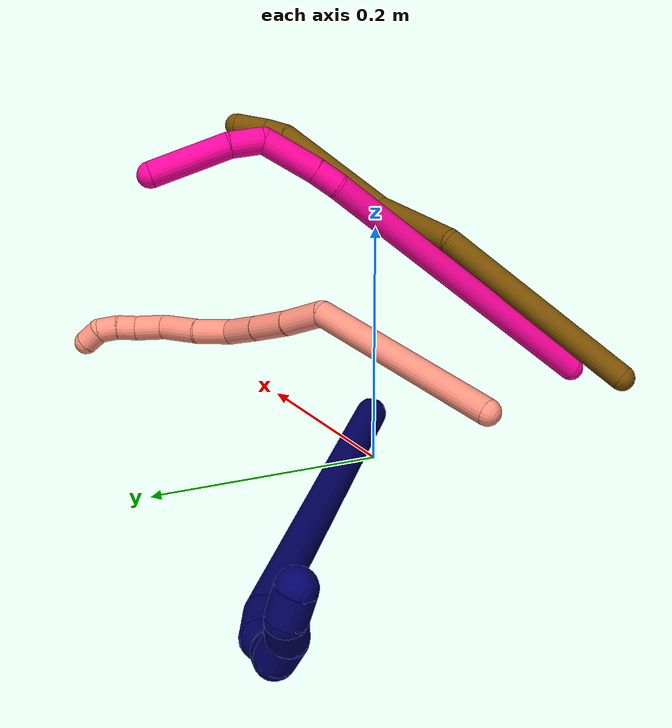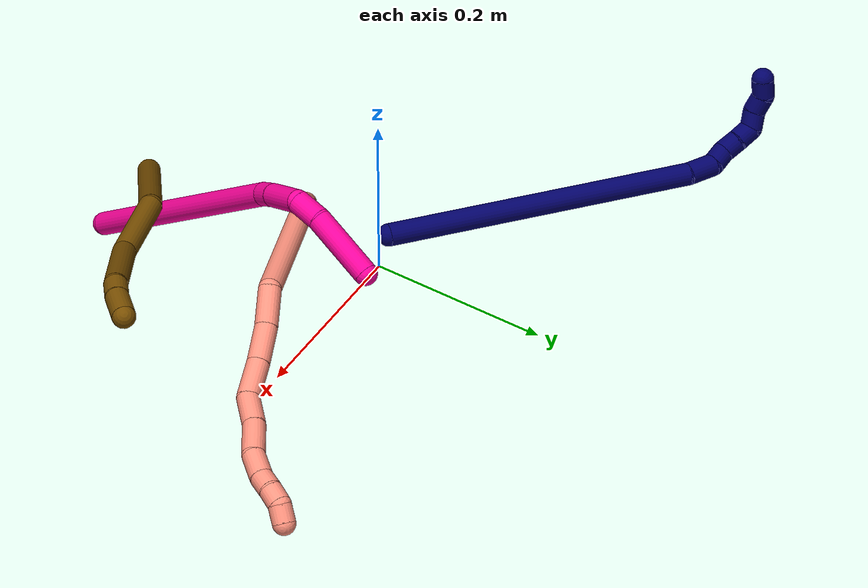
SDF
<sdf version="1.7">
 <world name="default">
  <model name="photoneo_s_sensor">
   <static>1</static>
   <pose>0 0 2 1.57079 1.57079 3.14159</pose>
   <link name="link">
    <inertial><mass>0.1</mass></inertial>
    <sensor name="sensor" type="depth">
     <update_rate>30</update_rate>
     <camera>
      <horizontal_fov>1.22</horizontal_fov>
      <image><width>1920</width><height>1200</height><format>B8G8R8</format></image>
      <clip><near>0.1</near><far>4</far></clip>
      <depth_camera><output>points</output></depth_camera>
     </camera>
     <plugin name="camera_plugin" filename="libgazebo_ros_depth_camera.so">
      <baseline>0.2</baseline>
      <alwaysOn>1</alwaysOn>
      <updateRate>0.0</updateRate>
      <cameraName>camera_ir</cameraName>
      <imageTopicName>/camera/color/image_raw</imageTopicName>
      <cameraInfoTopicName>/camera/color/camera_info</cameraInfoTopicName>
      <depthImageTopicName>/camera/depth/image_raw</depthImageTopicName>
      <depthImageCameraInfoTopicName>/camera/depth/camera_info</depthImageCameraInfoTopicName>
      <pointCloudTopicName>/camera/depth/points</pointCloudTopicName>
      <frameName>fr_optical</frameName>
      <pointCloudCutoff>0.1</pointCloudCutoff>
      <pointCloudCutoffMax>2.0</pointCloudCutoffMax>
      <distortionK1>0</distortionK1>
      <distortionK2>0</distortionK2>
      <distortionK3>0</distortionK3>
      <distortionT1>0</distortionT1>
      <distortionT2>0</distortionT2>
      <CxPrime>0</CxPrime>
      <Cx>0</Cx>
      <Cy>0</Cy>
      <focalLength>0</focalLength>
      <hackBaseline>0</hackBaseline>
     </plugin>
    </sensor>
   </link>
  </model>
  <model name="bin">
   <static>1</static>
   <link name="bottom">
    <collision name="collision-bottom">
     <pose>0 0 -0.01 0 -0 0</pose>
     <geometry><box><size>0.8 0.6 0.02</size></box></geometry>
     <surface>
      <friction><ode><mu>100</mu><mu2>100</mu2></ode></friction>
      <contact><collide_bitmask>65535</collide_bitmask></contact>
     </surface>
    </collision>
   </link>
   <link name="west_wall">
    <collision name="collision-west_wall">
     <pose>-0.41 0 0.1 0 -0 0</pose>
     <geometry><box><size>0.02 0.6 0.2</size></box></geometry>
     <surface>
      <friction><ode><mu>100</mu><mu2>100</mu2></ode></friction>
      <contact><collide_bitmask>65535</collide_bitmask></contact>
     </surface>
    </collision>
   </link>
   <link name="east_wall">
    <collision name="collision-east_wall">
     <pose>0.41 0 0.1 0 -0 0</pose>
     <geometry><box><size>0.02 0.6 0.2</size></box></geometry>
     <surface>
      <friction><ode><mu>100</mu><mu2>100</mu2></ode></friction>
      <contact><collide_bitmask>65535</collide_bitmask></contact>
     </surface>
    </collision>
   </link>
   <link name="south_wall">
    <collision name="collision-south_wall">
     <pose>0 -0.31 0.1 0 -0 0</pose>
     <geometry><box><size>0.8 0.02 0.2</size></box></geometry>
     <surface>
      <friction><ode><mu>100</mu><mu2>100</mu2></ode></friction>
      <contact><collide_bitmask>65535</collide_bitmask></contact>
     </surface>
    </collision>
   </link>
   <link name="north_wall">
    <collision name="collision-north_wall">
     <pose>0 0.31 0.1 0 -0 0</pose>
     <geometry><box><size>0.8 0.02 0.2</size></box></geometry>
     <surface>
      <friction><ode><mu>100</mu><mu2>100</mu2></ode></friction>
      <contact><collide_bitmask>65535</collide_bitmask></contact>
     </surface>
    </collision>
   </link>
  </model>
  <model name="7">
   <static>0</static>
   <link name="7">
    <collision name="collision-cylinder-e_1_1_4">
     <pose>-0.020964 0.137019 0.103674 -0.923059 -0.121411 0.06044</pose>
     <geometry><cylinder><radius>0.0125</radius><length>0.346192</length></cylinder></geometry>
     <surface>
      <friction><ode><mu>1.16</mu><mu2>1.16</mu2><slip1>0</slip1><slip2>0</slip2></ode></friction>
      <contact><ode><kp>1e+06</kp><kd>1</kd><max_vel>0</max_vel><min_depth>0.001</min_depth></ode></contact>
     </surface>
    </collision>
    <visual name="visual-cylinder-e_1_1_4">
     <pose>-0.020964 0.137019 0.103674 -0.923059 -0.121411 0.06044</pose>
     <geometry><cylinder><radius>0.0125</radius><length>0.346192</length></cylinder></geometry>
     <material><ambient>0.003922 0 0.403922 1</ambient></material>
    </visual>
    <collision name="collision-cylinder-e_2_4_5">
     <pose>-0.042593 0.284827 0.218926 -0.750169 -0.042003 0.01654</pose>
     <geometry><cylinder><radius>0.0125</radius><length>0.031677</length></cylinder></geometry>
     <surface>
      <friction><ode><mu>1.16</mu><mu2>1.16</mu2><slip1>0</slip1><slip2>0</slip2></ode></friction>
      <contact><ode><kp>1e+06</kp><kd>1</kd><max_vel>0</max_vel><min_depth>0.001</min_depth></ode></contact>
     </surface>
    </collision>
    <visual name="visual-cylinder-e_2_4_5">
     <pose>-0.042593 0.284827 0.218926 -0.750169 -0.042003 0.01654</pose>
     <geometry><cylinder><radius>0.0125</radius><length>0.031677</length></cylinder></geometry>
     <material><ambient>0.003922 0 0.403922 1</ambient></material>
    </visual>
    <collision name="collision-cylinder-e_3_5_6">
     <pose>-0.040296 0.299489 0.240055 -0.385201 0.27983 -0.054917</pose>
     <geometry><cylinder><radius>0.0125</radius><length>0.021449</length></cylinder></geometry>
     <surface>
      <friction><ode><mu>1.16</mu><mu2>1.16</mu2><slip1>0</slip1><slip2>0</slip2></ode></friction>
      <contact><ode><kp>1e+06</kp><kd>1</kd><max_vel>0</max_vel><min_depth>0.001</min_depth></ode></contact>
     </surface>
    </collision>
    <visual name="visual-cylinder-e_3_5_6">
     <pose>-0.040296 0.299489 0.240055 -0.385201 0.27983 -0.054917</pose>
     <geometry><cylinder><radius>0.0125</radius><length>0.021449</length></cylinder></geometry>
     <material><ambient>0.003922 0 0.403922 1</ambient></material>
    </visual>
    <collision name="collision-cylinder-e_4_6_7">
     <pose>-0.033664 0.310493 0.255785 -0.856873 0.370999 -0.170999</pose>
     <geometry><cylinder><radius>0.0125</radius><length>0.020248</length></cylinder></geometry>
     <surface>
      <friction><ode><mu>1.16</mu><mu2>1.16</mu2><slip1>0</slip1><slip2>0</slip2></ode></friction>
      <contact><ode><kp>1e+06</kp><kd>1</kd><max_vel>0</max_vel><min_depth>0.001</min_depth></ode></contact>
     </surface>
    </collision>
    <visual name="visual-cylinder-e_4_6_7">
     <pose>-0.033664 0.310493 0.255785 -0.856873 0.370999 -0.170999</pose>
     <geometry><cylinder><radius>0.0125</radius><length>0.020248</length></cylinder></geometry>
     <material><ambient>0.003922 0 0.403922 1</ambient></material>
    </visual>
    <collision name="collision-cylinder-e_5_7_8">
     <pose>-0.02665 0.323917 0.269189 -0.716556 0.335771 -0.12675</pose>
     <geometry><cylinder><radius>0.0125</radius><length>0.020297</length></cylinder></geometry>
     <surface>
      <friction><ode><mu>1.16</mu><mu2>1.16</mu2><slip1>0</slip1><slip2>0</slip2></ode></friction>
      <contact><ode><kp>1e+06</kp><kd>1</kd><max_vel>0</max_vel><min_depth>0.001</min_depth></ode></contact>
     </surface>
    </collision>
    <visual name="visual-cylinder-e_5_7_8">
     <pose>-0.02665 0.323917 0.269189 -0.716556 0.335771 -0.12675</pose>
     <geometry><cylinder><radius>0.0125</radius><length>0.020297</length></cylinder></geometry>
     <material><ambient>0.003922 0 0.403922 1</ambient></material>
    </visual>
    <collision name="collision-cylinder-e_6_8_9">
     <pose>-0.014325 0.332605 0.280108 -0.575146 1.11503 -0.364725</pose>
     <geometry><cylinder><radius>0.0125</radius><length>0.020002</length></cylinder></geometry>
     <surface>
      <friction><ode><mu>1.16</mu><mu2>1.16</mu2><slip1>0</slip1><slip2>0</slip2></ode></friction>
      <contact><ode><kp>1e+06</kp><kd>1</kd><max_vel>0</max_vel><min_depth>0.001</min_depth></ode></contact>
     </surface>
    </collision>
    <visual name="visual-cylinder-e_6_8_9">
     <pose>-0.014325 0.332605 0.280108 -0.575146 1.11503 -0.364725</pose>
     <geometry><cylinder><radius>0.0125</radius><length>0.020002</length></cylinder></geometry>
     <material><ambient>0.003922 0 0.403922 1</ambient></material>
    </visual>
    <collision name="collision-cylinder-e_7_9_10">
     <pose>0.002565 0.340838 0.285858 -1.23219 0.906838 -0.664444</pose>
     <geometry><cylinder><radius>0.0125</radius><length>0.020089</length></cylinder></geometry>
     <surface>
      <friction><ode><mu>1.16</mu><mu2>1.16</mu2><slip1>0</slip1><slip2>0</slip2></ode></friction>
      <contact><ode><kp>1e+06</kp><kd>1</kd><max_vel>0</max_vel><min_depth>0.001</min_depth></ode></contact>
     </surface>
    </collision>
    <visual name="visual-cylinder-e_7_9_10">
     <pose>0.002565 0.340838 0.285858 -1.23219 0.906838 -0.664444</pose>
     <geometry><cylinder><radius>0.0125</radius><length>0.020089</length></cylinder></geometry>
     <material><ambient>0.003922 0 0.403922 1</ambient></material>
    </visual>
    <collision name="collision-cylinder-e_8_10_2">
     <pose>0.020404 0.347973 0.288381 -1.22534 1.43279 -1.09842</pose>
     <geometry><cylinder><radius>0.0125</radius><length>0.020046</length></cylinder></geometry>
     <surface>
      <friction><ode><mu>1.16</mu><mu2>1.16</mu2><slip1>0</slip1><slip2>0</slip2></ode></friction>
      <contact><ode><kp>1e+06</kp><kd>1</kd><max_vel>0</max_vel><min_depth>0.001</min_depth></ode></contact>
     </surface>
    </collision>
    <visual name="visual-cylinder-e_8_10_2">
     <pose>0.020404 0.347973 0.288381 -1.22534 1.43279 -1.09842</pose>
     <geometry><cylinder><radius>0.0125</radius><length>0.020046</length></cylinder></geometry>
     <material><ambient>0.003922 0 0.403922 1</ambient></material>
    </visual>
    <collision name="collision-sphere-2">
     <pose>0.030331 0.349271 0.288847 0 -0 0</pose>
     <geometry><sphere><radius>0.0125</radius></sphere></geometry>
     <surface>
      <friction><ode><mu>1.16</mu><mu2>1.16</mu2><slip1>0</slip1><slip2>0</slip2></ode></friction>
      <contact><ode><kp>1e+06</kp><kd>1</kd><max_vel>0</max_vel><min_depth>0.001</min_depth></ode></contact>
     </surface>
    </collision>
    <visual name="visual-sphere-2">
     <pose>0.030331 0.349271 0.288847 0 -0 0</pose>
     <geometry><sphere><radius>0.0125</radius></sphere></geometry>
     <material><ambient>0.003922 0 0.403922 1</ambient></material>
    </visual>
    <collision name="collision-sphere-10">
     <pose>0.010476 0.346676 0.287914 0 -0 0</pose>
     <geometry><sphere><radius>0.0125</radius></sphere></geometry>
     <surface>
      <friction><ode><mu>1.16</mu><mu2>1.16</mu2><slip1>0</slip1><slip2>0</slip2></ode></friction>
      <contact><ode><kp>1e+06</kp><kd>1</kd><max_vel>0</max_vel><min_depth>0.001</min_depth></ode></contact>
     </surface>
    </collision>
    <visual name="visual-sphere-10">
     <pose>0.010476 0.346676 0.287914 0 -0 0</pose>
     <geometry><sphere><radius>0.0125</radius></sphere></geometry>
     <material><ambient>0.003922 0 0.403922 1</ambient></material>
    </visual>
    <collision name="collision-sphere-9">
     <pose>-0.005345 0.334999 0.283802 0 -0 0</pose>
     <geometry><sphere><radius>0.0125</radius></sphere></geometry>
     <surface>
      <friction><ode><mu>1.16</mu><mu2>1.16</mu2><slip1>0</slip1><slip2>0</slip2></ode></friction>
      <contact><ode><kp>1e+06</kp><kd>1</kd><max_vel>0</max_vel><min_depth>0.001</min_depth></ode></contact>
     </surface>
    </collision>
    <visual name="visual-sphere-9">
     <pose>-0.005345 0.334999 0.283802 0 -0 0</pose>
     <geometry><sphere><radius>0.0125</radius></sphere></geometry>
     <material><ambient>0.003922 0 0.403922 1</ambient></material>
    </visual>
    <collision name="collision-sphere-4">
     <pose>-0.041928 0.274039 0.207349 0 -0 0</pose>
     <geometry><sphere><radius>0.0125</radius></sphere></geometry>
     <surface>
      <friction><ode><mu>1.16</mu><mu2>1.16</mu2><slip1>0</slip1><slip2>0</slip2></ode></friction>
      <contact><ode><kp>1e+06</kp><kd>1</kd><max_vel>0</max_vel><min_depth>0.001</min_depth></ode></contact>
     </surface>
    </collision>
    <visual name="visual-sphere-4">
     <pose>-0.041928 0.274039 0.207349 0 -0 0</pose>
     <geometry><sphere><radius>0.0125</radius></sphere></geometry>
     <material><ambient>0.003922 0 0.403922 1</ambient></material>
    </visual>
    <collision name="collision-sphere-1">
     <geometry><sphere><radius>0.0125</radius></sphere></geometry>
     <surface>
      <friction><ode><mu>1.16</mu><mu2>1.16</mu2><slip1>0</slip1><slip2>0</slip2></ode></friction>
      <contact><ode><kp>1e+06</kp><kd>1</kd><max_vel>0</max_vel><min_depth>0.001</min_depth></ode></contact>
     </surface>
    </collision>
    <visual name="visual-sphere-1">
     <geometry><sphere><radius>0.0125</radius></sphere></geometry>
     <material><ambient>0.003922 0 0.403922 1</ambient></material>
    </visual>
    <collision name="collision-sphere-8">
     <pose>-0.023306 0.330211 0.276414 0 -0 0</pose>
     <geometry><sphere><radius>0.0125</radius></sphere></geometry>
     <surface>
      <friction><ode><mu>1.16</mu><mu2>1.16</mu2><slip1>0</slip1><slip2>0</slip2></ode></friction>
      <contact><ode><kp>1e+06</kp><kd>1</kd><max_vel>0</max_vel><min_depth>0.001</min_depth></ode></contact>
     </surface>
    </collision>
    <visual name="visual-sphere-8">
     <pose>-0.023306 0.330211 0.276414 0 -0 0</pose>
     <geometry><sphere><radius>0.0125</radius></sphere></geometry>
     <material><ambient>0.003922 0 0.403922 1</ambient></material>
    </visual>
    <collision name="collision-sphere-5">
     <pose>-0.043258 0.295616 0.230503 0 -0 0</pose>
     <geometry><sphere><radius>0.0125</radius></sphere></geometry>
     <surface>
      <friction><ode><mu>1.16</mu><mu2>1.16</mu2><slip1>0</slip1><slip2>0</slip2></ode></friction>
      <contact><ode><kp>1e+06</kp><kd>1</kd><max_vel>0</max_vel><min_depth>0.001</min_depth></ode></contact>
     </surface>
    </collision>
    <visual name="visual-sphere-5">
     <pose>-0.043258 0.295616 0.230503 0 -0 0</pose>
     <geometry><sphere><radius>0.0125</radius></sphere></geometry>
     <material><ambient>0.003922 0 0.403922 1</ambient></material>
    </visual>
    <collision name="collision-sphere-6">
     <pose>-0.037334 0.303362 0.249607 0 -0 0</pose>
     <geometry><sphere><radius>0.0125</radius></sphere></geometry>
     <surface>
      <friction><ode><mu>1.16</mu><mu2>1.16</mu2><slip1>0</slip1><slip2>0</slip2></ode></friction>
      <contact><ode><kp>1e+06</kp><kd>1</kd><max_vel>0</max_vel><min_depth>0.001</min_depth></ode></contact>
     </surface>
    </collision>
    <visual name="visual-sphere-6">
     <pose>-0.037334 0.303362 0.249607 0 -0 0</pose>
     <geometry><sphere><radius>0.0125</radius></sphere></geometry>
     <material><ambient>0.003922 0 0.403922 1</ambient></material>
    </visual>
    <collision name="collision-sphere-7">
     <pose>-0.029993 0.317624 0.261963 0 -0 0</pose>
     <geometry><sphere><radius>0.0125</radius></sphere></geometry>
     <surface>
      <friction><ode><mu>1.16</mu><mu2>1.16</mu2><slip1>0</slip1><slip2>0</slip2></ode></friction>
      <contact><ode><kp>1e+06</kp><kd>1</kd><max_vel>0</max_vel><min_depth>0.001</min_depth></ode></contact>
     </surface>
    </collision>
    <visual name="visual-sphere-7">
     <pose>-0.029993 0.317624 0.261963 0 -0 0</pose>
     <geometry><sphere><radius>0.0125</radius></sphere></geometry>
     <material><ambient>0.003922 0 0.403922 1</ambient></material>
    </visual>
    <inertial>
     <pose>-0.021039 0.192436 0.151488 0 -0 0</pose>
     <mass>0.5</mass>
     <inertia>
      <ixx>0.003658</ixx>
      <ixy>0</ixy>
      <ixz>0</ixz>
      <iyy>0.002355</iyy>
      <iyz>0</iyz>
      <izz>-0.002316</izz>
     </inertia>
    </inertial>
   </link>
   <pose>-0.008242 0.007431 0.043554 2.29172 -1.22161 -2.01678</pose>
  </model>
  <model name="12">
   <static>0</static>
   <link name="12">
    <collision name="collision-cylinder-e_1_1_4">
     <pose>0.038695 0.017756 0.097858 -0.179489 0.371046 -0.033774</pose>
     <geometry><cylinder><radius>0.0125</radius><length>0.213436</length></cylinder></geometry>
     <surface>
      <friction><ode><mu>1.16</mu><mu2>1.16</mu2><slip1>0</slip1><slip2>0</slip2></ode></friction>
      <contact><ode><kp>1e+06</kp><kd>1</kd><max_vel>0</max_vel><min_depth>0.001</min_depth></ode></contact>
     </surface>
    </collision>
    <visual name="visual-cylinder-e_1_1_4">
     <pose>0.038695 0.017756 0.097858 -0.179489 0.371046 -0.033774</pose>
     <geometry><cylinder><radius>0.0125</radius><length>0.213436</length></cylinder></geometry>
     <material><ambient>0.466667 0.301961 0 1</ambient></material>
    </visual>
    <collision name="collision-cylinder-e_2_4_5">
     <pose>0.112971 0.037971 0.227942 -0.076193 0.833393 -0.033737</pose>
     <geometry><cylinder><radius>0.0125</radius><length>0.096138</length></cylinder></geometry>
     <surface>
      <friction><ode><mu>1.16</mu><mu2>1.16</mu2><slip1>0</slip1><slip2>0</slip2></ode></friction>
      <contact><ode><kp>1e+06</kp><kd>1</kd><max_vel>0</max_vel><min_depth>0.001</min_depth></ode></contact>
     </surface>
    </collision>
    <visual name="visual-cylinder-e_2_4_5">
     <pose>0.112971 0.037971 0.227942 -0.076193 0.833393 -0.033737</pose>
     <geometry><cylinder><radius>0.0125</radius><length>0.096138</length></cylinder></geometry>
     <material><ambient>0.466667 0.301961 0 1</ambient></material>
    </visual>
    <collision name="collision-cylinder-e_3_5_6">
     <pose>0.177824 0.04938 0.319451 -0.149819 0.454186 -0.034681</pose>
     <geometry><cylinder><radius>0.0125</radius><length>0.133435</length></cylinder></geometry>
     <surface>
      <friction><ode><mu>1.16</mu><mu2>1.16</mu2><slip1>0</slip1><slip2>0</slip2></ode></friction>
      <contact><ode><kp>1e+06</kp><kd>1</kd><max_vel>0</max_vel><min_depth>0.001</min_depth></ode></contact>
     </surface>
    </collision>
    <visual name="visual-cylinder-e_3_5_6">
     <pose>0.177824 0.04938 0.319451 -0.149819 0.454186 -0.034681</pose>
     <geometry><cylinder><radius>0.0125</radius><length>0.133435</length></cylinder></geometry>
     <material><ambient>0.466667 0.301961 0 1</ambient></material>
    </visual>
    <collision name="collision-cylinder-e_4_6_7">
     <pose>0.2141 0.062653 0.386993 -0.482317 0.64436 -0.163831</pose>
     <geometry><cylinder><radius>0.0125</radius><length>0.023324</length></cylinder></geometry>
     <surface>
      <friction><ode><mu>1.16</mu><mu2>1.16</mu2><slip1>0</slip1><slip2>0</slip2></ode></friction>
      <contact><ode><kp>1e+06</kp><kd>1</kd><max_vel>0</max_vel><min_depth>0.001</min_depth></ode></contact>
     </surface>
    </collision>
    <visual name="visual-cylinder-e_4_6_7">
     <pose>0.2141 0.062653 0.386993 -0.482317 0.64436 -0.163831</pose>
     <geometry><cylinder><radius>0.0125</radius><length>0.023324</length></cylinder></geometry>
     <material><ambient>0.466667 0.301961 0 1</ambient></material>
    </visual>
    <collision name="collision-cylinder-e_5_7_2">
     <pose>0.230356 0.075552 0.4064 -0.655669 0.581855 -0.202972</pose>
     <geometry><cylinder><radius>0.0125</radius><length>0.033667</length></cylinder></geometry>
     <surface>
      <friction><ode><mu>1.16</mu><mu2>1.16</mu2><slip1>0</slip1><slip2>0</slip2></ode></friction>
      <contact><ode><kp>1e+06</kp><kd>1</kd><max_vel>0</max_vel><min_depth>0.001</min_depth></ode></contact>
     </surface>
    </collision>
    <visual name="visual-cylinder-e_5_7_2">
     <pose>0.230356 0.075552 0.4064 -0.655669 0.581855 -0.202972</pose>
     <geometry><cylinder><radius>0.0125</radius><length>0.033667</length></cylinder></geometry>
     <material><ambient>0.466667 0.301961 0 1</ambient></material>
    </visual>
    <collision name="collision-sphere-2">
     <pose>0.239608 0.084126 0.417547 0 -0 0</pose>
     <geometry><sphere><radius>0.0125</radius></sphere></geometry>
     <surface>
      <friction><ode><mu>1.16</mu><mu2>1.16</mu2><slip1>0</slip1><slip2>0</slip2></ode></friction>
      <contact><ode><kp>1e+06</kp><kd>1</kd><max_vel>0</max_vel><min_depth>0.001</min_depth></ode></contact>
     </surface>
    </collision>
    <visual name="visual-sphere-2">
     <pose>0.239608 0.084126 0.417547 0 -0 0</pose>
     <geometry><sphere><radius>0.0125</radius></sphere></geometry>
     <material><ambient>0.466667 0.301961 0 1</ambient></material>
    </visual>
    <collision name="collision-sphere-7">
     <pose>0.221105 0.066978 0.395253 0 -0 0</pose>
     <geometry><sphere><radius>0.0125</radius></sphere></geometry>
     <surface>
      <friction><ode><mu>1.16</mu><mu2>1.16</mu2><slip1>0</slip1><slip2>0</slip2></ode></friction>
      <contact><ode><kp>1e+06</kp><kd>1</kd><max_vel>0</max_vel><min_depth>0.001</min_depth></ode></contact>
     </surface>
    </collision>
    <visual name="visual-sphere-7">
     <pose>0.221105 0.066978 0.395253 0 -0 0</pose>
     <geometry><sphere><radius>0.0125</radius></sphere></geometry>
     <material><ambient>0.466667 0.301961 0 1</ambient></material>
    </visual>
    <collision name="collision-sphere-6">
     <pose>0.207095 0.058329 0.378733 0 -0 0</pose>
     <geometry><sphere><radius>0.0125</radius></sphere></geometry>
     <surface>
      <friction><ode><mu>1.16</mu><mu2>1.16</mu2><slip1>0</slip1><slip2>0</slip2></ode></friction>
      <contact><ode><kp>1e+06</kp><kd>1</kd><max_vel>0</max_vel><min_depth>0.001</min_depth></ode></contact>
     </surface>
    </collision>
    <visual name="visual-sphere-6">
     <pose>0.207095 0.058329 0.378733 0 -0 0</pose>
     <geometry><sphere><radius>0.0125</radius></sphere></geometry>
     <material><ambient>0.466667 0.301961 0 1</ambient></material>
    </visual>
    <collision name="collision-sphere-5">
     <pose>0.148553 0.040431 0.260169 0 -0 0</pose>
     <geometry><sphere><radius>0.0125</radius></sphere></geometry>
     <surface>
      <friction><ode><mu>1.16</mu><mu2>1.16</mu2><slip1>0</slip1><slip2>0</slip2></ode></friction>
      <contact><ode><kp>1e+06</kp><kd>1</kd><max_vel>0</max_vel><min_depth>0.001</min_depth></ode></contact>
     </surface>
    </collision>
    <visual name="visual-sphere-5">
     <pose>0.148553 0.040431 0.260169 0 -0 0</pose>
     <geometry><sphere><radius>0.0125</radius></sphere></geometry>
     <material><ambient>0.466667 0.301961 0 1</ambient></material>
    </visual>
    <collision name="collision-sphere-1">
     <geometry><sphere><radius>0.0125</radius></sphere></geometry>
     <surface>
      <friction><ode><mu>1.16</mu><mu2>1.16</mu2><slip1>0</slip1><slip2>0</slip2></ode></friction>
      <contact><ode><kp>1e+06</kp><kd>1</kd><max_vel>0</max_vel><min_depth>0.001</min_depth></ode></contact>
     </surface>
    </collision>
    <visual name="visual-sphere-1">
     <geometry><sphere><radius>0.0125</radius></sphere></geometry>
     <material><ambient>0.466667 0.301961 0 1</ambient></material>
    </visual>
    <collision name="collision-sphere-4">
     <pose>0.07739 0.035511 0.195716 0 -0 0</pose>
     <geometry><sphere><radius>0.0125</radius></sphere></geometry>
     <surface>
      <friction><ode><mu>1.16</mu><mu2>1.16</mu2><slip1>0</slip1><slip2>0</slip2></ode></friction>
      <contact><ode><kp>1e+06</kp><kd>1</kd><max_vel>0</max_vel><min_depth>0.001</min_depth></ode></contact>
     </surface>
    </collision>
    <visual name="visual-sphere-4">
     <pose>0.07739 0.035511 0.195716 0 -0 0</pose>
     <geometry><sphere><radius>0.0125</radius></sphere></geometry>
     <material><ambient>0.466667 0.301961 0 1</ambient></material>
    </visual>
    <inertial>
     <pose>0.111193 0.036068 0.216269 0 -0 0</pose>
     <mass>0.5</mass>
     <inertia>
      <ixx>0.000986</ixx>
      <ixy>0</ixy>
      <ixz>0</ixz>
      <iyy>0.001063</iyy>
      <iyz>0</iyz>
      <izz>-0.000585</izz>
     </inertia>
    </inertial>
   </link>
   <pose>0.02778 -0.280386 0.024452 -0.379111 0.468659 0.004987</pose>
  </model>
  <model name="16">
   <static>0</static>
   <link name="16">
    <collision name="collision-cylinder-e_1_1_4">
     <pose>-0.001387 -0.003889 0.100249 0.038771 -0.013826 -0.000268</pose>
     <geometry><cylinder><radius>0.0125</radius><length>0.200669</length></cylinder></geometry>
     <surface>
      <friction><ode><mu>1.16</mu><mu2>1.16</mu2><slip1>0</slip1><slip2>0</slip2></ode></friction>
      <contact><ode><kp>1e+06</kp><kd>1</kd><max_vel>0</max_vel><min_depth>0.001</min_depth></ode></contact>
     </surface>
    </collision>
    <visual name="visual-cylinder-e_1_1_4">
     <pose>-0.001387 -0.003889 0.100249 0.038771 -0.013826 -0.000268</pose>
     <geometry><cylinder><radius>0.0125</radius><length>0.200669</length></cylinder></geometry>
     <material><ambient>1 0.576471 0.494118 1</ambient></material>
    </visual>
    <collision name="collision-cylinder-e_2_4_5">
     <pose>0.009176 -0.002742 0.218618 -0.271046 0.566087 -0.079279</pose>
     <geometry><cylinder><radius>0.0125</radius><length>0.044564</length></cylinder></geometry>
     <surface>
      <friction><ode><mu>1.16</mu><mu2>1.16</mu2><slip1>0</slip1><slip2>0</slip2></ode></friction>
      <contact><ode><kp>1e+06</kp><kd>1</kd><max_vel>0</max_vel><min_depth>0.001</min_depth></ode></contact>
     </surface>
    </collision>
    <visual name="visual-cylinder-e_2_4_5">
     <pose>0.009176 -0.002742 0.218618 -0.271046 0.566087 -0.079279</pose>
     <geometry><cylinder><radius>0.0125</radius><length>0.044564</length></cylinder></geometry>
     <material><ambient>1 0.576471 0.494118 1</ambient></material>
    </visual>
    <collision name="collision-cylinder-e_3_5_6">
     <pose>0.032153 0.004782 0.254962 -0.135752 0.540025 -0.037626</pose>
     <geometry><cylinder><radius>0.0125</radius><length>0.042889</length></cylinder></geometry>
     <surface>
      <friction><ode><mu>1.16</mu><mu2>1.16</mu2><slip1>0</slip1><slip2>0</slip2></ode></friction>
      <contact><ode><kp>1e+06</kp><kd>1</kd><max_vel>0</max_vel><min_depth>0.001</min_depth></ode></contact>
     </surface>
    </collision>
    <visual name="visual-cylinder-e_3_5_6">
     <pose>0.032153 0.004782 0.254962 -0.135752 0.540025 -0.037626</pose>
     <geometry><cylinder><radius>0.0125</radius><length>0.042889</length></cylinder></geometry>
     <material><ambient>1 0.576471 0.494118 1</ambient></material>
    </visual>
    <collision name="collision-cylinder-e_4_6_7">
     <pose>0.054071 0.008429 0.291194 -0.06419 0.543075 -0.017877</pose>
     <geometry><cylinder><radius>0.0125</radius><length>0.042157</length></cylinder></geometry>
     <surface>
      <friction><ode><mu>1.16</mu><mu2>1.16</mu2><slip1>0</slip1><slip2>0</slip2></ode></friction>
      <contact><ode><kp>1e+06</kp><kd>1</kd><max_vel>0</max_vel><min_depth>0.001</min_depth></ode></contact>
     </surface>
    </collision>
    <visual name="visual-cylinder-e_4_6_7">
     <pose>0.054071 0.008429 0.291194 -0.06419 0.543075 -0.017877</pose>
     <geometry><cylinder><radius>0.0125</radius><length>0.042157</length></cylinder></geometry>
     <material><ambient>1 0.576471 0.494118 1</ambient></material>
    </visual>
    <collision name="collision-cylinder-e_5_7_8">
     <pose>0.068781 0.017168 0.326011 -0.423721 0.204096 -0.044045</pose>
     <geometry><cylinder><radius>0.0125</radius><length>0.03766</length></cylinder></geometry>
     <surface>
      <friction><ode><mu>1.16</mu><mu2>1.16</mu2><slip1>0</slip1><slip2>0</slip2></ode></friction>
      <contact><ode><kp>1e+06</kp><kd>1</kd><max_vel>0</max_vel><min_depth>0.001</min_depth></ode></contact>
     </surface>
    </collision>
    <visual name="visual-cylinder-e_5_7_8">
     <pose>0.068781 0.017168 0.326011 -0.423721 0.204096 -0.044045</pose>
     <geometry><cylinder><radius>0.0125</radius><length>0.03766</length></cylinder></geometry>
     <material><ambient>1 0.576471 0.494118 1</ambient></material>
    </visual>
    <collision name="collision-cylinder-e_6_8_9">
     <pose>0.077262 0.02932 0.362499 -0.228226 0.22692 -0.026118</pose>
     <geometry><cylinder><radius>0.0125</radius><length>0.04147</length></cylinder></geometry>
     <surface>
      <friction><ode><mu>1.16</mu><mu2>1.16</mu2><slip1>0</slip1><slip2>0</slip2></ode></friction>
      <contact><ode><kp>1e+06</kp><kd>1</kd><max_vel>0</max_vel><min_depth>0.001</min_depth></ode></contact>
     </surface>
    </collision>
    <visual name="visual-cylinder-e_6_8_9">
     <pose>0.077262 0.02932 0.362499 -0.228226 0.22692 -0.026118</pose>
     <geometry><cylinder><radius>0.0125</radius><length>0.04147</length></cylinder></geometry>
     <material><ambient>1 0.576471 0.494118 1</ambient></material>
    </visual>
    <collision name="collision-cylinder-e_7_9_10">
     <pose>0.084767 0.041554 0.394997 -0.538818 0.18791 -0.052028</pose>
     <geometry><cylinder><radius>0.0125</radius><length>0.030404</length></cylinder></geometry>
     <surface>
      <friction><ode><mu>1.16</mu><mu2>1.16</mu2><slip1>0</slip1><slip2>0</slip2></ode></friction>
      <contact><ode><kp>1e+06</kp><kd>1</kd><max_vel>0</max_vel><min_depth>0.001</min_depth></ode></contact>
     </surface>
    </collision>
    <visual name="visual-cylinder-e_7_9_10">
     <pose>0.084767 0.041554 0.394997 -0.538818 0.18791 -0.052028</pose>
     <geometry><cylinder><radius>0.0125</radius><length>0.030404</length></cylinder></geometry>
     <material><ambient>1 0.576471 0.494118 1</ambient></material>
    </visual>
    <collision name="collision-cylinder-e_8_10_11">
     <pose>0.087531 0.055363 0.415788 -0.656657 -0.007541 0.002569</pose>
     <geometry><cylinder><radius>0.0125</radius><length>0.020132</length></cylinder></geometry>
     <surface>
      <friction><ode><mu>1.16</mu><mu2>1.16</mu2><slip1>0</slip1><slip2>0</slip2></ode></friction>
      <contact><ode><kp>1e+06</kp><kd>1</kd><max_vel>0</max_vel><min_depth>0.001</min_depth></ode></contact>
     </surface>
    </collision>
    <visual name="visual-cylinder-e_8_10_11">
     <pose>0.087531 0.055363 0.415788 -0.656657 -0.007541 0.002569</pose>
     <geometry><cylinder><radius>0.0125</radius><length>0.020132</length></cylinder></geometry>
     <material><ambient>1 0.576471 0.494118 1</ambient></material>
    </visual>
    <collision name="collision-cylinder-e_9_11_12">
     <pose>0.089205 0.068343 0.430871 -0.765695 0.175601 -0.07087</pose>
     <geometry><cylinder><radius>0.0125</radius><length>0.020034</length></cylinder></geometry>
     <surface>
      <friction><ode><mu>1.16</mu><mu2>1.16</mu2><slip1>0</slip1><slip2>0</slip2></ode></friction>
      <contact><ode><kp>1e+06</kp><kd>1</kd><max_vel>0</max_vel><min_depth>0.001</min_depth></ode></contact>
     </surface>
    </collision>
    <visual name="visual-cylinder-e_9_11_12">
     <pose>0.089205 0.068343 0.430871 -0.765695 0.175601 -0.07087</pose>
     <geometry><cylinder><radius>0.0125</radius><length>0.020034</length></cylinder></geometry>
     <material><ambient>1 0.576471 0.494118 1</ambient></material>
    </visual>
    <collision name="collision-cylinder-e_10_12_2">
     <pose>0.097742 0.08077 0.442763 -0.863298 0.745059 -0.356183</pose>
     <geometry><cylinder><radius>0.0125</radius><length>0.020021</length></cylinder></geometry>
     <surface>
      <friction><ode><mu>1.16</mu><mu2>1.16</mu2><slip1>0</slip1><slip2>0</slip2></ode></friction>
      <contact><ode><kp>1e+06</kp><kd>1</kd><max_vel>0</max_vel><min_depth>0.001</min_depth></ode></contact>
     </surface>
    </collision>
    <visual name="visual-cylinder-e_10_12_2">
     <pose>0.097742 0.08077 0.442763 -0.863298 0.745059 -0.356183</pose>
     <geometry><cylinder><radius>0.0125</radius><length>0.020021</length></cylinder></geometry>
     <material><ambient>1 0.576471 0.494118 1</ambient></material>
    </visual>
    <collision name="collision-sphere-2">
     <pose>0.104529 0.086363 0.447546 0 -0 0</pose>
     <geometry><sphere><radius>0.0125</radius></sphere></geometry>
     <surface>
      <friction><ode><mu>1.16</mu><mu2>1.16</mu2><slip1>0</slip1><slip2>0</slip2></ode></friction>
      <contact><ode><kp>1e+06</kp><kd>1</kd><max_vel>0</max_vel><min_depth>0.001</min_depth></ode></contact>
     </surface>
    </collision>
    <visual name="visual-sphere-2">
     <pose>0.104529 0.086363 0.447546 0 -0 0</pose>
     <geometry><sphere><radius>0.0125</radius></sphere></geometry>
     <material><ambient>1 0.576471 0.494118 1</ambient></material>
    </visual>
    <collision name="collision-sphere-12">
     <pose>0.090955 0.075178 0.437981 0 -0 0</pose>
     <geometry><sphere><radius>0.0125</radius></sphere></geometry>
     <surface>
      <friction><ode><mu>1.16</mu><mu2>1.16</mu2><slip1>0</slip1><slip2>0</slip2></ode></friction>
      <contact><ode><kp>1e+06</kp><kd>1</kd><max_vel>0</max_vel><min_depth>0.001</min_depth></ode></contact>
     </surface>
    </collision>
    <visual name="visual-sphere-12">
     <pose>0.090955 0.075178 0.437981 0 -0 0</pose>
     <geometry><sphere><radius>0.0125</radius></sphere></geometry>
     <material><ambient>1 0.576471 0.494118 1</ambient></material>
    </visual>
    <collision name="collision-sphere-11">
     <pose>0.087455 0.061507 0.423761 0 -0 0</pose>
     <geometry><sphere><radius>0.0125</radius></sphere></geometry>
     <surface>
      <friction><ode><mu>1.16</mu><mu2>1.16</mu2><slip1>0</slip1><slip2>0</slip2></ode></friction>
      <contact><ode><kp>1e+06</kp><kd>1</kd><max_vel>0</max_vel><min_depth>0.001</min_depth></ode></contact>
     </surface>
    </collision>
    <visual name="visual-sphere-11">
     <pose>0.087455 0.061507 0.423761 0 -0 0</pose>
     <geometry><sphere><radius>0.0125</radius></sphere></geometry>
     <material><ambient>1 0.576471 0.494118 1</ambient></material>
    </visual>
    <collision name="collision-sphere-10">
     <pose>0.087607 0.049218 0.407816 0 -0 0</pose>
     <geometry><sphere><radius>0.0125</radius></sphere></geometry>
     <surface>
      <friction><ode><mu>1.16</mu><mu2>1.16</mu2><slip1>0</slip1><slip2>0</slip2></ode></friction>
      <contact><ode><kp>1e+06</kp><kd>1</kd><max_vel>0</max_vel><min_depth>0.001</min_depth></ode></contact>
     </surface>
    </collision>
    <visual name="visual-sphere-10">
     <pose>0.087607 0.049218 0.407816 0 -0 0</pose>
     <geometry><sphere><radius>0.0125</radius></sphere></geometry>
     <material><ambient>1 0.576471 0.494118 1</ambient></material>
    </visual>
    <collision name="collision-sphere-9">
     <pose>0.081927 0.033891 0.382179 0 -0 0</pose>
     <geometry><sphere><radius>0.0125</radius></sphere></geometry>
     <surface>
      <friction><ode><mu>1.16</mu><mu2>1.16</mu2><slip1>0</slip1><slip2>0</slip2></ode></friction>
      <contact><ode><kp>1e+06</kp><kd>1</kd><max_vel>0</max_vel><min_depth>0.001</min_depth></ode></contact>
     </surface>
    </collision>
    <visual name="visual-sphere-9">
     <pose>0.081927 0.033891 0.382179 0 -0 0</pose>
     <geometry><sphere><radius>0.0125</radius></sphere></geometry>
     <material><ambient>1 0.576471 0.494118 1</ambient></material>
    </visual>
    <collision name="collision-sphere-4">
     <pose>-0.002774 -0.007777 0.200499 0 -0 0</pose>
     <geometry><sphere><radius>0.0125</radius></sphere></geometry>
     <surface>
      <friction><ode><mu>1.16</mu><mu2>1.16</mu2><slip1>0</slip1><slip2>0</slip2></ode></friction>
      <contact><ode><kp>1e+06</kp><kd>1</kd><max_vel>0</max_vel><min_depth>0.001</min_depth></ode></contact>
     </surface>
    </collision>
    <visual name="visual-sphere-4">
     <pose>-0.002774 -0.007777 0.200499 0 -0 0</pose>
     <geometry><sphere><radius>0.0125</radius></sphere></geometry>
     <material><ambient>1 0.576471 0.494118 1</ambient></material>
    </visual>
    <collision name="collision-sphere-1">
     <geometry><sphere><radius>0.0125</radius></sphere></geometry>
     <surface>
      <friction><ode><mu>1.16</mu><mu2>1.16</mu2><slip1>0</slip1><slip2>0</slip2></ode></friction>
      <contact><ode><kp>1e+06</kp><kd>1</kd><max_vel>0</max_vel><min_depth>0.001</min_depth></ode></contact>
     </surface>
    </collision>
    <visual name="visual-sphere-1">
     <geometry><sphere><radius>0.0125</radius></sphere></geometry>
     <material><ambient>1 0.576471 0.494118 1</ambient></material>
    </visual>
    <collision name="collision-sphere-8">
     <pose>0.072597 0.024749 0.34282 0 -0 0</pose>
     <geometry><sphere><radius>0.0125</radius></sphere></geometry>
     <surface>
      <friction><ode><mu>1.16</mu><mu2>1.16</mu2><slip1>0</slip1><slip2>0</slip2></ode></friction>
      <contact><ode><kp>1e+06</kp><kd>1</kd><max_vel>0</max_vel><min_depth>0.001</min_depth></ode></contact>
     </surface>
    </collision>
    <visual name="visual-sphere-8">
     <pose>0.072597 0.024749 0.34282 0 -0 0</pose>
     <geometry><sphere><radius>0.0125</radius></sphere></geometry>
     <material><ambient>1 0.576471 0.494118 1</ambient></material>
    </visual>
    <collision name="collision-sphere-5">
     <pose>0.021127 0.002293 0.236738 0 -0 0</pose>
     <geometry><sphere><radius>0.0125</radius></sphere></geometry>
     <surface>
      <friction><ode><mu>1.16</mu><mu2>1.16</mu2><slip1>0</slip1><slip2>0</slip2></ode></friction>
      <contact><ode><kp>1e+06</kp><kd>1</kd><max_vel>0</max_vel><min_depth>0.001</min_depth></ode></contact>
     </surface>
    </collision>
    <visual name="visual-sphere-5">
     <pose>0.021127 0.002293 0.236738 0 -0 0</pose>
     <geometry><sphere><radius>0.0125</radius></sphere></geometry>
     <material><ambient>1 0.576471 0.494118 1</ambient></material>
    </visual>
    <collision name="collision-sphere-6">
     <pose>0.043178 0.007271 0.273185 0 -0 0</pose>
     <geometry><sphere><radius>0.0125</radius></sphere></geometry>
     <surface>
      <friction><ode><mu>1.16</mu><mu2>1.16</mu2><slip1>0</slip1><slip2>0</slip2></ode></friction>
      <contact><ode><kp>1e+06</kp><kd>1</kd><max_vel>0</max_vel><min_depth>0.001</min_depth></ode></contact>
     </surface>
    </collision>
    <visual name="visual-sphere-6">
     <pose>0.043178 0.007271 0.273185 0 -0 0</pose>
     <geometry><sphere><radius>0.0125</radius></sphere></geometry>
     <material><ambient>1 0.576471 0.494118 1</ambient></material>
    </visual>
    <collision name="collision-sphere-7">
     <pose>0.064964 0.009586 0.309203 0 -0 0</pose>
     <geometry><sphere><radius>0.0125</radius></sphere></geometry>
     <surface>
      <friction><ode><mu>1.16</mu><mu2>1.16</mu2><slip1>0</slip1><slip2>0</slip2></ode></friction>
      <contact><ode><kp>1e+06</kp><kd>1</kd><max_vel>0</max_vel><min_depth>0.001</min_depth></ode></contact>
     </surface>
    </collision>
    <visual name="visual-sphere-7">
     <pose>0.064964 0.009586 0.309203 0 -0 0</pose>
     <geometry><sphere><radius>0.0125</radius></sphere></geometry>
     <material><ambient>1 0.576471 0.494118 1</ambient></material>
    </visual>
    <inertial>
     <pose>0.035334 0.013769 0.236515 0 -0 0</pose>
     <mass>0.5</mass>
     <inertia>
      <ixx>0.000729</ixx>
      <ixy>0</ixy>
      <ixz>0</ixz>
      <iyy>0.000729</iyy>
      <iyz>0</iyz>
      <izz>4.1e-05</izz>
     </inertia>
    </inertial>
   </link>
   <pose>-0.014677 -0.103808 0.029577 -0.859048 1.17419 -0.477126</pose>
  </model>
  <model name="18">
   <static>0</static>
   <link name="18">
    <collision name="collision-cylinder-e_1_1_4">
     <pose>0.049744 0.109542 0.099525 -0.833272 0.32424 -0.144509</pose>
     <geometry><cylinder><radius>0.0125</radius><length>0.312277</length></cylinder></geometry>
     <surface>
      <friction><ode><mu>1.16</mu><mu2>1.16</mu2><slip1>0</slip1><slip2>0</slip2></ode></friction>
      <contact><ode><kp>1e+06</kp><kd>1</kd><max_vel>0</max_vel><min_depth>0.001</min_depth></ode></contact>
     </surface>
    </collision>
    <visual name="visual-cylinder-e_1_1_4">
     <pose>0.049744 0.109542 0.099525 -0.833272 0.32424 -0.144509</pose>
     <geometry><cylinder><radius>0.0125</radius><length>0.312277</length></cylinder></geometry>
     <material><ambient>1 0.007843 0.615686 1</ambient></material>
    </visual>
    <collision name="collision-cylinder-e_2_4_5">
     <pose>0.100766 0.228752 0.206872 -0.890623 0.102397 -0.048905</pose>
     <geometry><cylinder><radius>0.0125</radius><length>0.025003</length></cylinder></geometry>
     <surface>
      <friction><ode><mu>1.16</mu><mu2>1.16</mu2><slip1>0</slip1><slip2>0</slip2></ode></friction>
      <contact><ode><kp>1e+06</kp><kd>1</kd><max_vel>0</max_vel><min_depth>0.001</min_depth></ode></contact>
     </surface>
    </collision>
    <visual name="visual-cylinder-e_2_4_5">
     <pose>0.100766 0.228752 0.206872 -0.890623 0.102397 -0.048905</pose>
     <geometry><cylinder><radius>0.0125</radius><length>0.025003</length></cylinder></geometry>
     <material><ambient>1 0.007843 0.615686 1</ambient></material>
    </visual>
    <collision name="collision-cylinder-e_3_5_6">
     <pose>0.104012 0.258449 0.233491 -0.817082 0.071542 -0.030981</pose>
     <geometry><cylinder><radius>0.0125</radius><length>0.055076</length></cylinder></geometry>
     <surface>
      <friction><ode><mu>1.16</mu><mu2>1.16</mu2><slip1>0</slip1><slip2>0</slip2></ode></friction>
      <contact><ode><kp>1e+06</kp><kd>1</kd><max_vel>0</max_vel><min_depth>0.001</min_depth></ode></contact>
     </surface>
    </collision>
    <visual name="visual-cylinder-e_3_5_6">
     <pose>0.104012 0.258449 0.233491 -0.817082 0.071542 -0.030981</pose>
     <geometry><cylinder><radius>0.0125</radius><length>0.055076</length></cylinder></geometry>
     <material><ambient>1 0.007843 0.615686 1</ambient></material>
    </visual>
    <collision name="collision-cylinder-e_4_6_7">
     <pose>0.103918 0.281219 0.267635 -0.176821 -0.131533 0.011676</pose>
     <geometry><cylinder><radius>0.0125</radius><length>0.031451</length></cylinder></geometry>
     <surface>
      <friction><ode><mu>1.16</mu><mu2>1.16</mu2><slip1>0</slip1><slip2>0</slip2></ode></friction>
      <contact><ode><kp>1e+06</kp><kd>1</kd><max_vel>0</max_vel><min_depth>0.001</min_depth></ode></contact>
     </surface>
    </collision>
    <visual name="visual-cylinder-e_4_6_7">
     <pose>0.103918 0.281219 0.267635 -0.176821 -0.131533 0.011676</pose>
     <geometry><cylinder><radius>0.0125</radius><length>0.031451</length></cylinder></geometry>
     <material><ambient>1 0.007843 0.615686 1</ambient></material>
    </visual>
    <collision name="collision-cylinder-e_5_7_2">
     <pose>0.091318 0.283998 0.319592 -0.001 -0.280234 0.000141</pose>
     <geometry><cylinder><radius>0.0125</radius><length>0.076193</length></cylinder></geometry>
     <surface>
      <friction><ode><mu>1.16</mu><mu2>1.16</mu2><slip1>0</slip1><slip2>0</slip2></ode></friction>
      <contact><ode><kp>1e+06</kp><kd>1</kd><max_vel>0</max_vel><min_depth>0.001</min_depth></ode></contact>
     </surface>
    </collision>
    <visual name="visual-cylinder-e_5_7_2">
     <pose>0.091318 0.283998 0.319592 -0.001 -0.280234 0.000141</pose>
     <geometry><cylinder><radius>0.0125</radius><length>0.076193</length></cylinder></geometry>
     <material><ambient>1 0.007843 0.615686 1</ambient></material>
    </visual>
    <collision name="collision-sphere-2">
     <pose>0.080782 0.284034 0.356203 0 -0 0</pose>
     <geometry><sphere><radius>0.0125</radius></sphere></geometry>
     <surface>
      <friction><ode><mu>1.16</mu><mu2>1.16</mu2><slip1>0</slip1><slip2>0</slip2></ode></friction>
      <contact><ode><kp>1e+06</kp><kd>1</kd><max_vel>0</max_vel><min_depth>0.001</min_depth></ode></contact>
     </surface>
    </collision>
    <visual name="visual-sphere-2">
     <pose>0.080782 0.284034 0.356203 0 -0 0</pose>
     <geometry><sphere><radius>0.0125</radius></sphere></geometry>
     <material><ambient>1 0.007843 0.615686 1</ambient></material>
    </visual>
    <collision name="collision-sphere-7">
     <pose>0.101855 0.283961 0.282982 0 -0 0</pose>
     <geometry><sphere><radius>0.0125</radius></sphere></geometry>
     <surface>
      <friction><ode><mu>1.16</mu><mu2>1.16</mu2><slip1>0</slip1><slip2>0</slip2></ode></friction>
      <contact><ode><kp>1e+06</kp><kd>1</kd><max_vel>0</max_vel><min_depth>0.001</min_depth></ode></contact>
     </surface>
    </collision>
    <visual name="visual-sphere-7">
     <pose>0.101855 0.283961 0.282982 0 -0 0</pose>
     <geometry><sphere><radius>0.0125</radius></sphere></geometry>
     <material><ambient>1 0.007843 0.615686 1</ambient></material>
    </visual>
    <collision name="collision-sphere-6">
     <pose>0.10598 0.278477 0.252288 0 -0 0</pose>
     <geometry><sphere><radius>0.0125</radius></sphere></geometry>
     <surface>
      <friction><ode><mu>1.16</mu><mu2>1.16</mu2><slip1>0</slip1><slip2>0</slip2></ode></friction>
      <contact><ode><kp>1e+06</kp><kd>1</kd><max_vel>0</max_vel><min_depth>0.001</min_depth></ode></contact>
     </surface>
    </collision>
    <visual name="visual-sphere-6">
     <pose>0.10598 0.278477 0.252288 0 -0 0</pose>
     <geometry><sphere><radius>0.0125</radius></sphere></geometry>
     <material><ambient>1 0.007843 0.615686 1</ambient></material>
    </visual>
    <collision name="collision-sphere-5">
     <pose>0.102043 0.238421 0.214693 0 -0 0</pose>
     <geometry><sphere><radius>0.0125</radius></sphere></geometry>
     <surface>
      <friction><ode><mu>1.16</mu><mu2>1.16</mu2><slip1>0</slip1><slip2>0</slip2></ode></friction>
      <contact><ode><kp>1e+06</kp><kd>1</kd><max_vel>0</max_vel><min_depth>0.001</min_depth></ode></contact>
     </surface>
    </collision>
    <visual name="visual-sphere-5">
     <pose>0.102043 0.238421 0.214693 0 -0 0</pose>
     <geometry><sphere><radius>0.0125</radius></sphere></geometry>
     <material><ambient>1 0.007843 0.615686 1</ambient></material>
    </visual>
    <collision name="collision-sphere-1">
     <geometry><sphere><radius>0.0125</radius></sphere></geometry>
     <surface>
      <friction><ode><mu>1.16</mu><mu2>1.16</mu2><slip1>0</slip1><slip2>0</slip2></ode></friction>
      <contact><ode><kp>1e+06</kp><kd>1</kd><max_vel>0</max_vel><min_depth>0.001</min_depth></ode></contact>
     </surface>
    </collision>
    <visual name="visual-sphere-1">
     <geometry><sphere><radius>0.0125</radius></sphere></geometry>
     <material><ambient>1 0.007843 0.615686 1</ambient></material>
    </visual>
    <collision name="collision-sphere-4">
     <pose>0.099488 0.219084 0.199051 0 -0 0</pose>
     <geometry><sphere><radius>0.0125</radius></sphere></geometry>
     <surface>
      <friction><ode><mu>1.16</mu><mu2>1.16</mu2><slip1>0</slip1><slip2>0</slip2></ode></friction>
      <contact><ode><kp>1e+06</kp><kd>1</kd><max_vel>0</max_vel><min_depth>0.001</min_depth></ode></contact>
     </surface>
    </collision>
    <visual name="visual-sphere-4">
     <pose>0.099488 0.219084 0.199051 0 -0 0</pose>
     <geometry><sphere><radius>0.0125</radius></sphere></geometry>
     <material><ambient>1 0.007843 0.615686 1</ambient></material>
    </visual>
    <inertial>
     <pose>0.068016 0.169289 0.16376 0 -0 0</pose>
     <mass>0.5</mass>
     <inertia>
      <ixx>0.00211</ixx>
      <ixy>0</ixy>
      <ixz>0</ixz>
      <iyy>0.001513</iyy>
      <iyz>0</iyz>
      <izz>-0.002577</izz>
     </inertia>
    </inertial>
   </link>
   <pose>0.112367 -0.281851 0.011619 1.79774 -0.549248 2.98526</pose>
  </model>
 </world>
</sdf>
